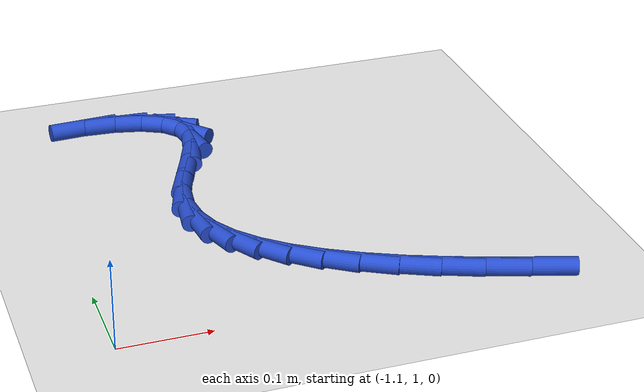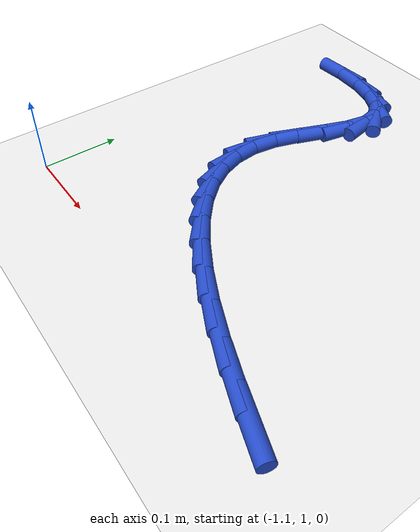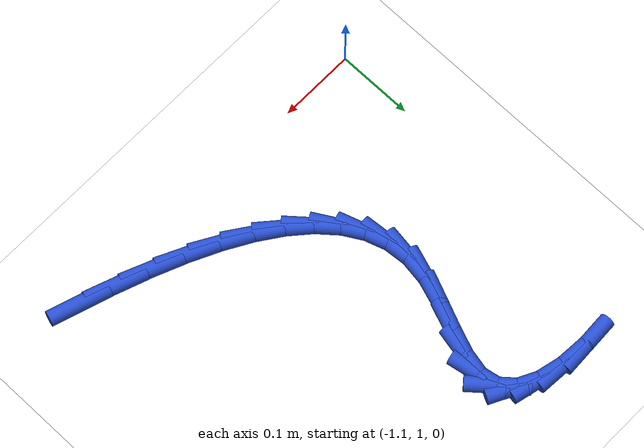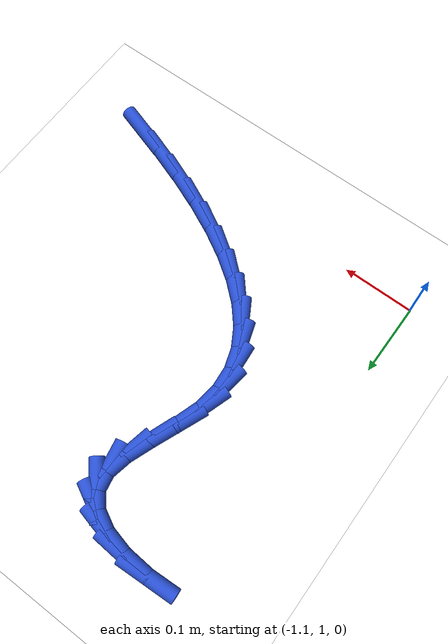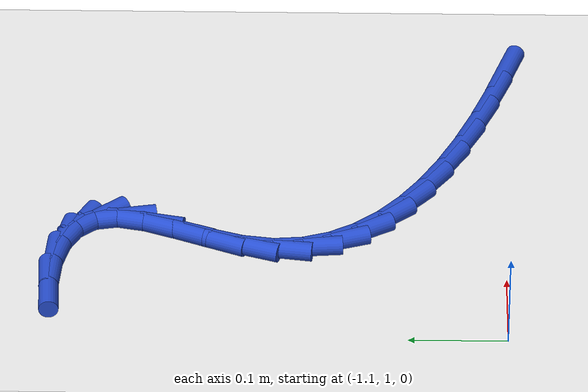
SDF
<sdf version="1.6">
 <world name="default">
  <model name="ground_plane">
   <static>1</static>
   <link name="link">
    <collision name="collision">
     <geometry><plane><normal>0 0 1</normal><size>100 100</size></plane></geometry>
     <surface><friction><ode><mu>100</mu><mu2>50</mu2></ode></friction></surface>
    </collision>
    <visual name="visual">
     <cast_shadows>0</cast_shadows>
     <geometry><plane><normal>0 0 1</normal><size>100 100</size></plane></geometry>
     <material>
      <script><uri>file://media/materials/scripts/gazebo.material</uri><name>Gazebo/WhiteGlow</name></script>
     </material>
    </visual>
   </link>
  </model>
  <model name="line">
   <link name="link_42">
    <pose>-0.6511800789483412 0.9956574041800399 0.01 0 1.57 -0.3115865338625908</pose>
    <collision name="collision">
     <geometry><cylinder><radius>0.01</radius><length>0.08</length></cylinder></geometry>
    </collision>
    <visual name="visual">
     <material>
      <script><name>Gazebo/Blue</name><uri>file://media/materials/scripts/gazebo.material</uri></script>
     </material>
     <geometry><cylinder><radius>0.01</radius><length>0.08</length></cylinder></geometry>
    </visual>
   </link>
   <link name="link_43">
    <pose>-0.6974605114507677 1.0105633005308245 0.01 0 1.57 -0.34630769540061374</pose>
    <collision name="collision">
     <geometry><cylinder><radius>0.01</radius><length>0.08</length></cylinder></geometry>
    </collision>
    <visual name="visual">
     <material>
      <script><name>Gazebo/Blue</name><uri>file://media/materials/scripts/gazebo.material</uri></script>
     </material>
     <geometry><cylinder><radius>0.01</radius><length>0.08</length></cylinder></geometry>
    </visual>
   </link>
   <link name="link_44">
    <pose>-0.7418235955837313 1.0265717114174886 0.01 0 1.57 -0.39124432322262953</pose>
    <collision name="collision">
     <geometry><cylinder><radius>0.01</radius><length>0.08</length></cylinder></geometry>
    </collision>
    <visual name="visual">
     <material>
      <script><name>Gazebo/Blue</name><uri>file://media/materials/scripts/gazebo.material</uri></script>
     </material>
     <geometry><cylinder><radius>0.01</radius><length>0.08</length></cylinder></geometry>
    </visual>
   </link>
   <link name="link_45">
    <pose>-0.7836144713511344 1.0438108752755682 0.01 0 1.57 -0.44702168474161225</pose>
    <collision name="collision">
     <geometry><cylinder><radius>0.01</radius><length>0.08</length></cylinder></geometry>
    </collision>
    <visual name="visual">
     <material>
      <script><name>Gazebo/Blue</name><uri>file://media/materials/scripts/gazebo.material</uri></script>
     </material>
     <geometry><cylinder><radius>0.01</radius><length>0.08</length></cylinder></geometry>
    </visual>
   </link>
   <link name="link_46">
    <pose>-0.8223145584044129 1.0623631958438264 0.01 0 1.57 -0.5168673470197425</pose>
    <collision name="collision">
     <geometry><cylinder><radius>0.01</radius><length>0.08</length></cylinder></geometry>
    </collision>
    <visual name="visual">
     <material>
      <script><name>Gazebo/Blue</name><uri>file://media/materials/scripts/gazebo.material</uri></script>
     </material>
     <geometry><cylinder><radius>0.01</radius><length>0.08</length></cylinder></geometry>
    </visual>
   </link>
   <link name="link_47">
    <pose>-0.8574074632578579 1.0823103413572492 0.01 0 1.57 -0.6051807832206538</pose>
    <collision name="collision">
     <geometry><cylinder><radius>0.01</radius><length>0.08</length></cylinder></geometry>
    </collision>
    <visual name="visual">
     <material>
      <script><name>Gazebo/Blue</name><uri>file://media/materials/scripts/gazebo.material</uri></script>
     </material>
     <geometry><cylinder><radius>0.01</radius><length>0.08</length></cylinder></geometry>
    </visual>
   </link>
   <link name="link_48">
    <pose>-0.8883767924257594 1.1037339800508204 0.01 0 1.57 -0.717615706751163</pose>
    <collision name="collision">
     <geometry><cylinder><radius>0.01</radius><length>0.08</length></cylinder></geometry>
    </collision>
    <visual name="visual">
     <material>
      <script><name>Gazebo/Blue</name><uri>file://media/materials/scripts/gazebo.material</uri></script>
     </material>
     <geometry><cylinder><radius>0.01</radius><length>0.08</length></cylinder></geometry>
    </visual>
   </link>
   <link name="link_49">
    <pose>-0.9147061524224076 1.1267157801595244 0.01 0 1.57 -0.8605627752418685</pose>
    <collision name="collision">
     <geometry><cylinder><radius>0.01</radius><length>0.08</length></cylinder></geometry>
    </collision>
    <visual name="visual">
     <material>
      <script><name>Gazebo/Blue</name><uri>file://media/materials/scripts/gazebo.material</uri></script>
     </material>
     <geometry><cylinder><radius>0.01</radius><length>0.08</length></cylinder></geometry>
    </visual>
   </link>
   <link name="link_50">
    <pose>-0.9358791497620937 1.1513374099183473 0.01 0 1.57 -1.0389514572612926</pose>
    <collision name="collision">
     <geometry><cylinder><radius>0.01</radius><length>0.08</length></cylinder></geometry>
    </collision>
    <visual name="visual">
     <material>
      <script><name>Gazebo/Blue</name><uri>file://media/materials/scripts/gazebo.material</uri></script>
     </material>
     <geometry><cylinder><radius>0.01</radius><length>0.08</length></cylinder></geometry>
    </visual>
   </link>
   <link name="link_51">
    <pose>-0.9513793909591076 1.177680537562273 0.01 0 1.57 -1.2513179724322299</pose>
    <collision name="collision">
     <geometry><cylinder><radius>0.01</radius><length>0.08</length></cylinder></geometry>
    </collision>
    <visual name="visual">
     <material>
      <script><name>Gazebo/Blue</name><uri>file://media/materials/scripts/gazebo.material</uri></script>
     </material>
     <geometry><cylinder><radius>0.01</radius><length>0.08</length></cylinder></geometry>
    </visual>
   </link>
   <link name="link_52">
    <pose>-0.9606904825277395 1.205826831326286 0.01 0 1.57 -1.4842514592352918</pose>
    <collision name="collision">
     <geometry><cylinder><radius>0.01</radius><length>0.08</length></cylinder></geometry>
    </collision>
    <visual name="visual">
     <material>
      <script><name>Gazebo/Blue</name><uri>file://media/materials/scripts/gazebo.material</uri></script>
     </material>
     <geometry><cylinder><radius>0.01</radius><length>0.08</length></cylinder></geometry>
    </visual>
   </link>
   <link name="link_53">
    <pose>-0.9632960309822802 1.2358579594453716 0.01 0 1.57 1.4275258089232647</pose>
    <collision name="collision">
     <geometry><cylinder><radius>0.01</radius><length>0.08</length></cylinder></geometry>
    </collision>
    <visual name="visual">
     <material>
      <script><name>Gazebo/Blue</name><uri>file://media/materials/scripts/gazebo.material</uri></script>
     </material>
     <geometry><cylinder><radius>0.01</radius><length>0.08</length></cylinder></geometry>
    </visual>
   </link>
   <link name="link_54">
    <pose>-0.958680112505247 1.2678554174600565 0.01 0 1.57 1.2471528208891973</pose>
    <collision name="collision">
     <geometry><cylinder><radius>0.01</radius><length>0.08</length></cylinder></geometry>
    </collision>
    <visual name="visual">
     <material>
      <script><name>Gazebo/Blue</name><uri>file://media/materials/scripts/gazebo.material</uri></script>
     </material>
     <geometry><cylinder><radius>0.01</radius><length>0.08</length></cylinder></geometry>
    </visual>
   </link>
   <link name="link_55">
    <pose>-0.9473913300000234 1.3015092802131996 0.01 0 1.57 1.175788893862983</pose>
    <collision name="collision">
     <geometry><cylinder><radius>0.01</radius><length>0.08</length></cylinder></geometry>
    </collision>
    <visual name="visual">
     <material>
      <script><name>Gazebo/Blue</name><uri>file://media/materials/scripts/gazebo.material</uri></script>
     </material>
     <geometry><cylinder><radius>0.01</radius><length>0.08</length></cylinder></geometry>
    </visual>
   </link>
   <link name="link_56">
    <pose>-0.9333096664231255 1.335284692182798 0.01 0 1.57 1.2039046054131186</pose>
    <collision name="collision">
     <geometry><cylinder><radius>0.01</radius><length>0.08</length></cylinder></geometry>
    </collision>
    <visual name="visual">
     <material>
      <script><name>Gazebo/Blue</name><uri>file://media/materials/scripts/gazebo.material</uri></script>
     </material>
     <geometry><cylinder><radius>0.01</radius><length>0.08</length></cylinder></geometry>
    </visual>
   </link>
   <link name="link_57">
    <pose>-0.920965015523969 1.3674078291756169 0.01 0 1.57 1.3620903950497678</pose>
    <collision name="collision">
     <geometry><cylinder><radius>0.01</radius><length>0.08</length></cylinder></geometry>
    </collision>
    <visual name="visual">
     <material>
      <script><name>Gazebo/Blue</name><uri>file://media/materials/scripts/gazebo.material</uri></script>
     </material>
     <geometry><cylinder><radius>0.01</radius><length>0.08</length></cylinder></geometry>
    </visual>
   </link>
   <link name="link_58">
    <pose>-0.9148872710519703 1.39610486699842 0.01 0 1.57 -1.3867115211086347</pose>
    <collision name="collision">
     <geometry><cylinder><radius>0.01</radius><length>0.08</length></cylinder></geometry>
    </collision>
    <visual name="visual">
     <material>
      <script><name>Gazebo/Blue</name><uri>file://media/materials/scripts/gazebo.material</uri></script>
     </material>
     <geometry><cylinder><radius>0.01</radius><length>0.08</length></cylinder></geometry>
    </visual>
   </link>
   <link name="link_59">
    <pose>-0.9192813065985592 1.4197042572916903 0.01 0 1.57 -0.8629041615421474</pose>
    <collision name="collision">
     <geometry><cylinder><radius>0.01</radius><length>0.08</length></cylinder></geometry>
    </collision>
    <visual name="visual">
     <material>
      <script><name>Gazebo/Blue</name><uri>file://media/materials/scripts/gazebo.material</uri></script>
     </material>
     <geometry><cylinder><radius>0.01</radius><length>0.08</length></cylinder></geometry>
    </visual>
   </link>
   <link name="link_60">
    <pose>-0.9346758364334732 1.4376912484369107 0.01 0 1.57 -0.47307711145588516</pose>
    <collision name="collision">
     <geometry><cylinder><radius>0.01</radius><length>0.08</length></cylinder></geometry>
    </collision>
    <visual name="visual">
     <material>
      <script><name>Gazebo/Blue</name><uri>file://media/materials/scripts/gazebo.material</uri></script>
     </material>
     <geometry><cylinder><radius>0.01</radius><length>0.08</length></cylinder></geometry>
    </visual>
   </link>
   <link name="link_61">
    <pose>-0.9592755026900848 1.450282417041009 0.01 0 1.57 -0.2281382153872773</pose>
    <collision name="collision">
     <geometry><cylinder><radius>0.01</radius><length>0.08</length></cylinder></geometry>
    </collision>
    <visual name="visual">
     <material>
      <script><name>Gazebo/Blue</name><uri>file://media/materials/scripts/gazebo.material</uri></script>
     </material>
     <geometry><cylinder><radius>0.01</radius><length>0.08</length></cylinder></geometry>
    </visual>
   </link>
   <link name="link_62">
    <pose>-0.9912482983002132 1.4577058723114358 0.01 0 1.57 -0.06611495418680223</pose>
    <collision name="collision">
     <geometry><cylinder><radius>0.01</radius><length>0.08</length></cylinder></geometry>
    </collision>
    <visual name="visual">
     <material>
      <script><name>Gazebo/Blue</name><uri>file://media/materials/scripts/gazebo.material</uri></script>
     </material>
     <geometry><cylinder><radius>0.01</radius><length>0.08</length></cylinder></geometry>
    </visual>
   </link>
   <link name="link_63">
    <pose>-1.0287622161956773 1.4601897234556418 0.01 0 1.57 0.05398630363658327</pose>
    <collision name="collision">
     <geometry><cylinder><radius>0.01</radius><length>0.08</length></cylinder></geometry>
    </collision>
    <visual name="visual">
     <material>
      <script><name>Gazebo/Blue</name><uri>file://media/materials/scripts/gazebo.material</uri></script>
     </material>
     <geometry><cylinder><radius>0.01</radius><length>0.08</length></cylinder></geometry>
    </visual>
   </link>
  </model>
 </world>
</sdf>
